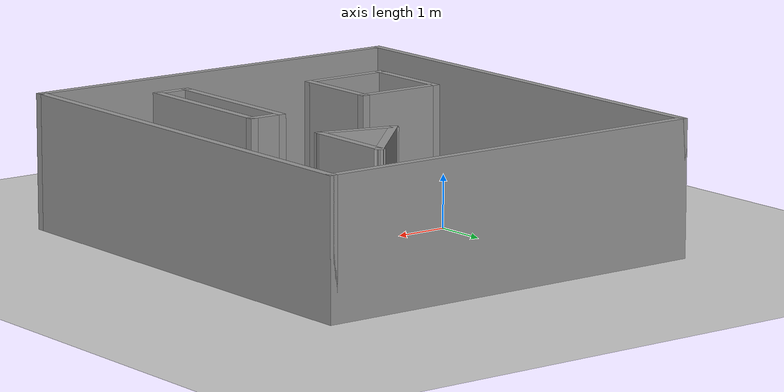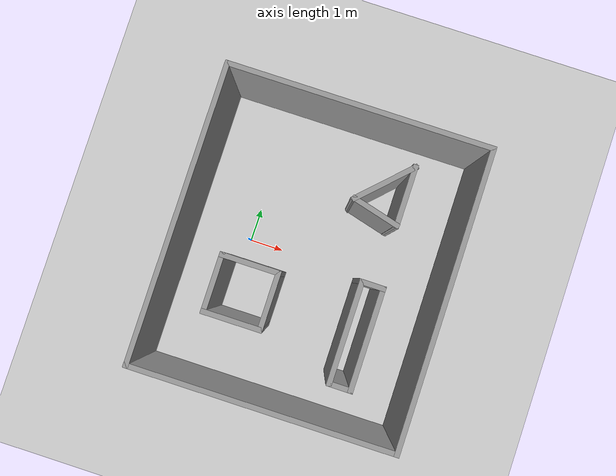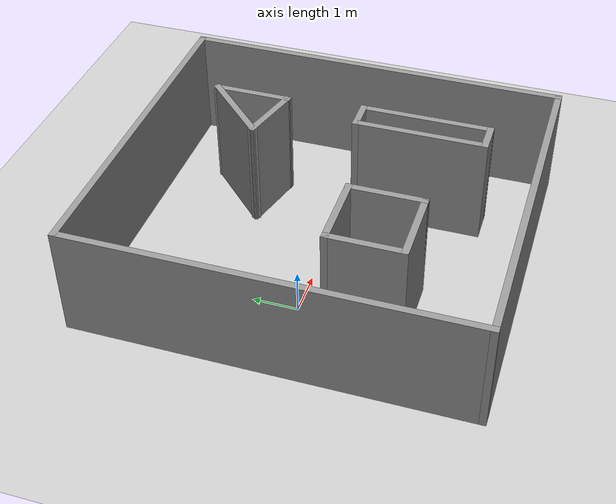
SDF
<sdf version="1.7">
 <world name="default">
  <light name="sun" type="directional">
   <pose>0 0 10 0 -0 0</pose>
   <diffuse>0.8 0.8 0.8 1</diffuse>
   <specular>0.2 0.2 0.2 1</specular>
   <attenuation>
    <range>1000</range>
    <constant>0.9</constant>
    <linear>0.01</linear>
    <quadratic>0.001</quadratic>
   </attenuation>
   <direction>-0.5 0.1 -0.9</direction>
   <spot><inner_angle>0</inner_angle><outer_angle>0</outer_angle><falloff>0</falloff></spot>
  </light>
  <model name="ground_plane">
   <static>1</static>
   <link name="link">
    <collision name="collision">
     <geometry><plane><normal>0 0 1</normal><size>100 100</size></plane></geometry>
     <surface>
      <contact><collide_bitmask>65535</collide_bitmask></contact>
      <friction><ode><mu>100</mu><mu2>50</mu2></ode></friction>
     </surface>
    </collision>
    <visual name="visual">
     <cast_shadows>0</cast_shadows>
     <geometry><plane><normal>0 0 1</normal><size>100 100</size></plane></geometry>
     <material>
      <script><uri>file://media/materials/scripts/gazebo.material</uri><name>Gazebo/Grey</name></script>
     </material>
    </visual>
   </link>
  </model>
  <gravity>0 0 -9.8</gravity>
  <magnetic_field>6e-06 2.3e-05 -4.2e-05</magnetic_field>
  <atmosphere type="adiabatic"/>
  <physics type="ode">
   <max_step_size>0.001</max_step_size>
   <real_time_factor>1</real_time_factor>
   <real_time_update_rate>1000</real_time_update_rate>
  </physics>
  <scene><ambient>0.4 0.4 0.4 1</ambient><background>0.7 0.7 0.7 1</background><shadows>1</shadows></scene>
  <spherical_coordinates>
   <surface_model>EARTH_WGS84</surface_model>
   <latitude_deg>0</latitude_deg>
   <longitude_deg>0</longitude_deg>
   <elevation>0</elevation>
   <heading_deg>0</heading_deg>
  </spherical_coordinates>
  <model name="Untitled3">
   <pose>1.96991 0.012598 0 0 -0 0</pose>
   <link name="Wall_15">
    <collision name="Wall_15_Collision">
     <geometry><box><size>7.75 0.15 2.5</size></box></geometry>
     <pose>0 0 1.25 0 -0 0</pose>
    </collision>
    <visual name="Wall_15_Visual">
     <pose>0 0 1.25 0 -0 0</pose>
     <geometry><box><size>7.75 0.15 2.5</size></box></geometry>
     <material>
      <script><uri>file://media/materials/scripts/gazebo.material</uri><name>Gazebo/Grey</name></script>
      <ambient>1 1 1 1</ambient>
     </material>
     <meta><layer>0</layer></meta>
    </visual>
    <pose>-0 4.3 0 0 -0 0</pose>
   </link>
   <link name="Wall_16">
    <collision name="Wall_16_Collision">
     <geometry><box><size>8.75 0.15 2.5</size></box></geometry>
     <pose>0 0 1.25 0 -0 0</pose>
    </collision>
    <visual name="Wall_16_Visual">
     <pose>0 0 1.25 0 -0 0</pose>
     <geometry><box><size>8.75 0.15 2.5</size></box></geometry>
     <material>
      <script><uri>file://media/materials/scripts/gazebo.material</uri><name>Gazebo/Grey</name></script>
      <ambient>1 1 1 1</ambient>
     </material>
     <meta><layer>0</layer></meta>
    </visual>
    <pose>3.8 0 0 0 -0 -1.5708</pose>
   </link>
   <link name="Wall_17">
    <collision name="Wall_17_Collision">
     <geometry><box><size>7.75 0.15 2.5</size></box></geometry>
     <pose>0 0 1.25 0 -0 0</pose>
    </collision>
    <visual name="Wall_17_Visual">
     <pose>0 0 1.25 0 -0 0</pose>
     <geometry><box><size>7.75 0.15 2.5</size></box></geometry>
     <material>
      <script><uri>file://media/materials/scripts/gazebo.material</uri><name>Gazebo/Grey</name></script>
      <ambient>1 1 1 1</ambient>
     </material>
     <meta><layer>0</layer></meta>
    </visual>
    <pose>-0 -4.3 0 0 -0 3.14159</pose>
   </link>
   <link name="Wall_18">
    <collision name="Wall_18_Collision">
     <geometry><box><size>8.75 0.15 2.5</size></box></geometry>
     <pose>0 0 1.25 0 -0 0</pose>
    </collision>
    <visual name="Wall_18_Visual">
     <pose>0 0 1.25 0 -0 0</pose>
     <geometry><box><size>8.75 0.15 2.5</size></box></geometry>
     <material>
      <script><uri>file://media/materials/scripts/gazebo.material</uri><name>Gazebo/Grey</name></script>
      <ambient>1 1 1 1</ambient>
     </material>
     <meta><layer>0</layer></meta>
    </visual>
    <pose>-3.8 0 0 0 -0 1.5708</pose>
   </link>
   <link name="Wall_20">
    <collision name="Wall_20_Collision">
     <geometry><box><size>2 0.15 2.5</size></box></geometry>
     <pose>0 0 1.25 0 -0 0</pose>
    </collision>
    <visual name="Wall_20_Visual">
     <pose>0 0 1.25 0 -0 0</pose>
     <geometry><box><size>2 0.15 2.5</size></box></geometry>
     <material>
      <script><uri>file://media/materials/scripts/gazebo.material</uri><name>Gazebo/Grey</name></script>
      <ambient>1 1 1 1</ambient>
     </material>
     <meta><layer>0</layer></meta>
    </visual>
    <pose>1.28207 2.50736 0 0 -0 -2.35619</pose>
   </link>
   <link name="Wall_21">
    <collision name="Wall_21_Collision">
     <geometry><box><size>1.5 0.15 2.5</size></box></geometry>
     <pose>0 0 1.25 0 -0 0</pose>
    </collision>
    <visual name="Wall_21_Visual">
     <pose>0 0 1.25 0 -0 0</pose>
     <geometry><box><size>1.5 0.15 2.5</size></box></geometry>
     <material>
      <script><uri>file://media/materials/scripts/gazebo.material</uri><name>Gazebo/Grey</name></script>
      <ambient>1 1 1 1</ambient>
     </material>
     <meta><layer>0</layer></meta>
    </visual>
    <pose>1.27999 1.67858 0 0 -0 -0.261799</pose>
   </link>
   <link name="Wall_22">
    <collision name="Wall_22_Collision">
     <geometry><box><size>1.80756 0.15 2.5</size></box></geometry>
     <pose>0 0 1.25 0 -0 0</pose>
    </collision>
    <visual name="Wall_22_Visual">
     <pose>0 0 1.25 0 -0 0</pose>
     <geometry><box><size>1.80756 0.15 2.5</size></box></geometry>
     <material>
      <script><uri>file://media/materials/scripts/gazebo.material</uri><name>Gazebo/Grey</name></script>
      <ambient>1 1 1 1</ambient>
     </material>
     <meta><layer>0</layer></meta>
    </visual>
    <pose>1.93406 2.33265 0 0 -0 1.56829</pose>
   </link>
   <link name="Wall_24">
    <collision name="Wall_24_Collision">
     <geometry><box><size>1.75 0.15 2.5</size></box></geometry>
     <pose>0 0 1.25 0 -0 0</pose>
    </collision>
    <visual name="Wall_24_Visual">
     <pose>0 0 1.25 0 -0 0</pose>
     <geometry><box><size>1.75 0.15 2.5</size></box></geometry>
     <material>
      <script><uri>file://media/materials/scripts/gazebo.material</uri><name>Gazebo/Grey</name></script>
      <ambient>1 1 1 1</ambient>
     </material>
     <meta><layer>0</layer></meta>
    </visual>
    <pose>-2.29189 -1.50159 0 0 -0 -1.5708</pose>
   </link>
   <link name="Wall_25">
    <collision name="Wall_25_Collision">
     <geometry><box><size>1.75 0.15 2.5</size></box></geometry>
     <pose>0 0 1.25 0 -0 0</pose>
    </collision>
    <visual name="Wall_25_Visual">
     <pose>0 0 1.25 0 -0 0</pose>
     <geometry><box><size>1.75 0.15 2.5</size></box></geometry>
     <material>
      <script><uri>file://media/materials/scripts/gazebo.material</uri><name>Gazebo/Grey</name></script>
      <ambient>1 1 1 1</ambient>
     </material>
     <meta><layer>0</layer></meta>
    </visual>
    <pose>-1.49189 -2.30159 0 0 -0 0</pose>
   </link>
   <link name="Wall_26">
    <collision name="Wall_26_Collision">
     <geometry><box><size>1.75 0.15 2.5</size></box></geometry>
     <pose>0 0 1.25 0 -0 0</pose>
    </collision>
    <visual name="Wall_26_Visual">
     <pose>0 0 1.25 0 -0 0</pose>
     <geometry><box><size>1.75 0.15 2.5</size></box></geometry>
     <material>
      <script><uri>file://media/materials/scripts/gazebo.material</uri><name>Gazebo/Grey</name></script>
      <ambient>1 1 1 1</ambient>
     </material>
     <meta><layer>0</layer></meta>
    </visual>
    <pose>-0.691894 -1.50159 0 0 -0 1.5708</pose>
   </link>
   <link name="Wall_27">
    <collision name="Wall_27_Collision">
     <geometry><box><size>1.75 0.15 2.5</size></box></geometry>
     <pose>0 0 1.25 0 -0 0</pose>
    </collision>
    <visual name="Wall_27_Visual">
     <pose>0 0 1.25 0 -0 0</pose>
     <geometry><box><size>1.75 0.15 2.5</size></box></geometry>
     <material>
      <script><uri>file://media/materials/scripts/gazebo.material</uri><name>Gazebo/Grey</name></script>
      <ambient>1 1 1 1</ambient>
     </material>
     <meta><layer>0</layer></meta>
    </visual>
    <pose>-1.49189 -0.701592 0 0 -0 3.14159</pose>
   </link>
   <link name="Wall_29">
    <collision name="Wall_29_Collision">
     <geometry><box><size>3 0.15 2.5</size></box></geometry>
     <pose>0 0 1.25 0 -0 0</pose>
    </collision>
    <visual name="Wall_29_Visual">
     <pose>0 0 1.25 0 -0 0</pose>
     <geometry><box><size>3 0.15 2.5</size></box></geometry>
     <material>
      <script><uri>file://media/materials/scripts/gazebo.material</uri><name>Gazebo/Grey</name></script>
      <ambient>1 1 1 1</ambient>
     </material>
     <meta><layer>0</layer></meta>
    </visual>
    <pose>1.51029 -1.65512 0 0 -0 -1.5708</pose>
   </link>
   <link name="Wall_30">
    <collision name="Wall_30_Collision">
     <geometry><box><size>0.75 0.15 2.5</size></box></geometry>
     <pose>0 0 1.25 0 -0 0</pose>
    </collision>
    <visual name="Wall_30_Visual">
     <pose>0 0 1.25 0 -0 0</pose>
     <geometry><box><size>0.75 0.15 2.5</size></box></geometry>
     <material>
      <script><uri>file://media/materials/scripts/gazebo.material</uri><name>Gazebo/Grey</name></script>
      <ambient>1 1 1 1</ambient>
     </material>
     <meta><layer>0</layer></meta>
    </visual>
    <pose>1.81029 -3.08012 0 0 -0 0</pose>
   </link>
   <link name="Wall_31">
    <collision name="Wall_31_Collision">
     <geometry><box><size>3 0.15 2.5</size></box></geometry>
     <pose>0 0 1.25 0 -0 0</pose>
    </collision>
    <visual name="Wall_31_Visual">
     <pose>0 0 1.25 0 -0 0</pose>
     <geometry><box><size>3 0.15 2.5</size></box></geometry>
     <material>
      <script><uri>file://media/materials/scripts/gazebo.material</uri><name>Gazebo/Grey</name></script>
      <ambient>1 1 1 1</ambient>
     </material>
     <meta><layer>0</layer></meta>
    </visual>
    <pose>2.11029 -1.65512 0 0 -0 1.5708</pose>
   </link>
   <link name="Wall_32">
    <collision name="Wall_32_Collision">
     <geometry><box><size>0.75 0.15 2.5</size></box></geometry>
     <pose>0 0 1.25 0 -0 0</pose>
    </collision>
    <visual name="Wall_32_Visual">
     <pose>0 0 1.25 0 -0 0</pose>
     <geometry><box><size>0.75 0.15 2.5</size></box></geometry>
     <material>
      <script><uri>file://media/materials/scripts/gazebo.material</uri><name>Gazebo/Grey</name></script>
      <ambient>1 1 1 1</ambient>
     </material>
     <meta><layer>0</layer></meta>
    </visual>
    <pose>1.81029 -0.230121 0 0 -0 3.14159</pose>
   </link>
   <static>1</static>
  </model>
 </world>
</sdf>
